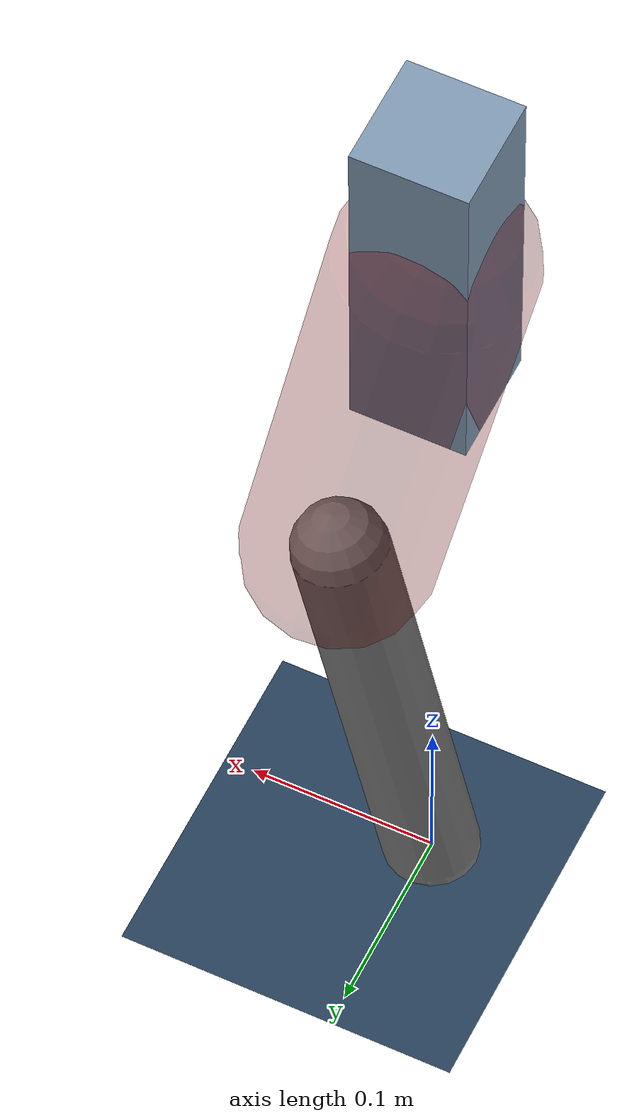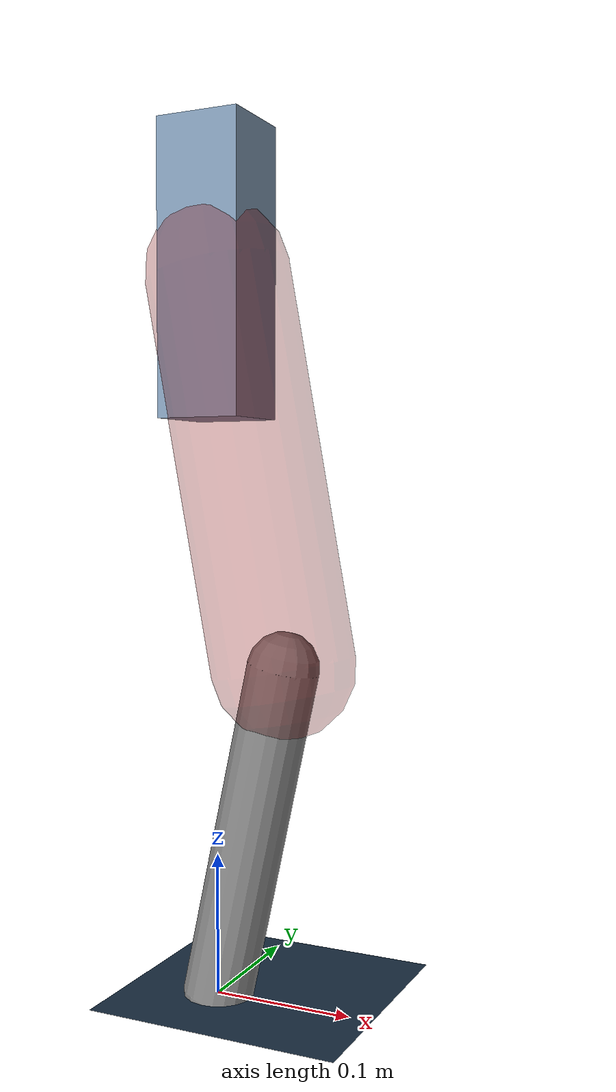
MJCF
<mujoco model="Hopper2D">
	<compiler inertiafromgeom="true" angle="radian" />
	<option timestep="0.001" integrator="implicit" cone="elliptic" solver="Newton" tolerance="1e-10" />

	<default>
		<geom contype="1" conaffinity="1" condim="3" friction="2 0.005 0.0001" solref="0.005 1" />
		<joint limited="true" damping="0.1" />
	</default>

	<asset>
		<texture name="skybox" type="skybox" builtin="gradient" rgb1=".4 .6 .8" rgb2="0 0 0" width="800" height="800" />
		<texture name="grid" type="2d" builtin="checker" rgb1=".1 .2 .3" rgb2=".2 .3 .4" width="300" height="300" mark="edge" markrgb=".2 .3 .4" />
		<material name="ground" texture="grid" texrepeat="1 1" texuniform="true" reflectance="0.1" />
		<material name="leg" rgba="0.5 0.6 0.7 1" />
	</asset>

	<worldbody>

		<geom name="floor" type="plane" size="5 5 0.25" material="ground" />

		<light directional="false" diffuse="0.8 0.8 0.8" specular="0.3 0.3 0.3" pos="0 0 2" dir="0 0 -1" />
		<light mode="targetbodycom" target="base" directional="false" diffuse="0.8 0.8 0.8" specular="0.3 0.3 0.3" pos="0 0 2" dir="0 0 -1" />

		<camera name="fixed" pos="0 -2 1" xyaxes="1 0 0 0 0 1" />
		<camera name="tracking" mode="trackcom" pos="0 -3 1" />

		<body name="root" pos="0 0 0.5060995271722157">
			<joint name="slide_x" type="slide" axis="1 0 0" range="-100 100" />
			<joint name="slide_z" type="slide" axis="0 0 1" range="0 10" />

			<body name="base" pos="0 0 0">
				<geom name="torso" type="box" size="0.03 0.03 0.1" mass="1.6949999999999998" material="leg" />

				<body name="link1" pos="0 0 0" euler="0 1.3858437608722838 0">
					<joint type="hinge" axis="0 -1 0" pos="0 0 0" name="hinge1" limited="true" range="-3.14 3.14" stiffness="0" damping="0.1" />
					<geom name="thigh" type="capsule" fromto="0 0 0 0.27431952634240364 0 0" size="0.05" rgba="0.5 0 0 0.3" mass="0.9200627211244898" />

					<body name="link2" pos="0.27431952634240364 0 0" euler="0 0.39514668083590027 0">
						<joint type="hinge" axis="0 -1 0" pos="0 0 0" name="hinge2" limited="true" range="-3.14 3.14" stiffness="0" damping="0.1" />
						<geom name="shank" type="capsule" fromto="0 0 0 0.24178000082981213 0 0" size="0.025" mass="0.4357240006638497" />

					</body>
				</body>
			</body>
		</body>
	</worldbody>

	<actuator>
		<motor name="torque1" joint="hinge1" ctrlrange="-24.187277979972926 24.187277979972926" ctrllimited="true" gear="1" />
		<motor name="torque2" joint="hinge2" ctrlrange="-55.316388203426776 55.316388203426776" ctrllimited="true" gear="1" />
	</actuator>
</mujoco>
